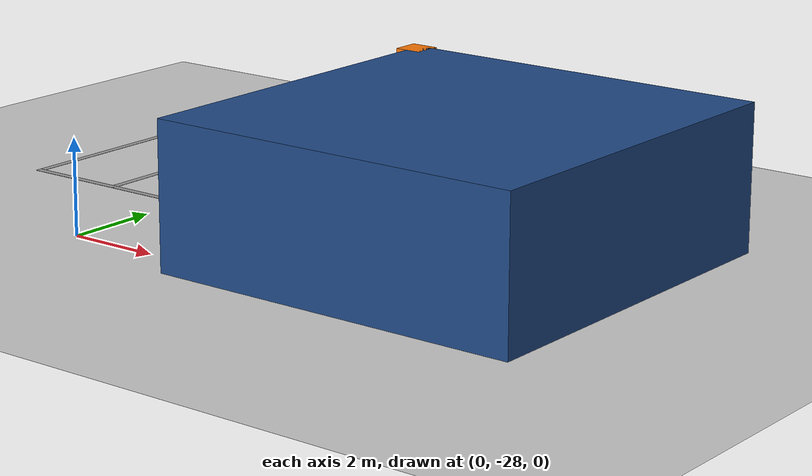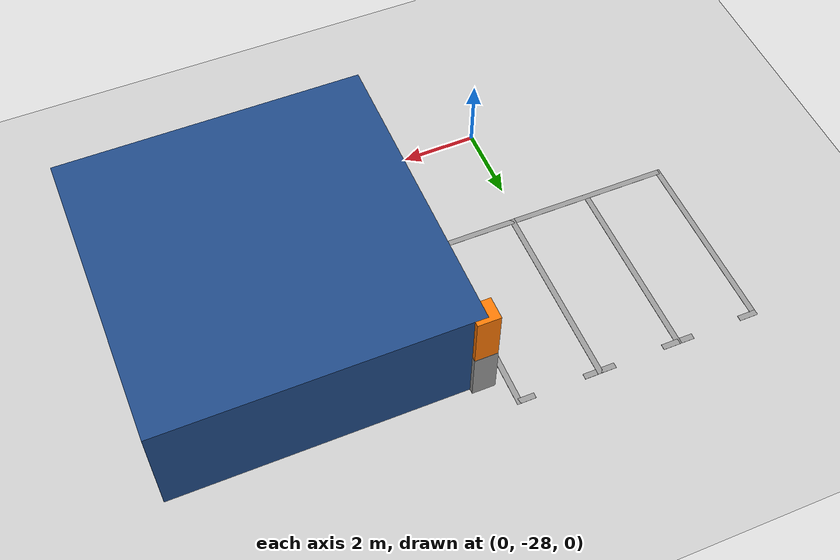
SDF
<sdf version="1.7">
 <world name="default">
  <model name="ground_plane">
   <static>1</static>
   <link name="link">
    <collision name="collision">
     <geometry><plane><normal>0 0 1</normal><size>100 100</size></plane></geometry>
     <surface><friction><ode><mu>100</mu><mu2>50</mu2></ode></friction></surface>
    </collision>
    <visual name="visual">
     <cast_shadows>0</cast_shadows>
     <geometry><plane><normal>0 0 1</normal><size>100 100</size></plane></geometry>
     <material>
      <script><uri>file://media/materials/scripts/gazebo.material</uri><name>Gazebo/Grey</name></script>
     </material>
    </visual>
   </link>
  </model>
  <model name="carport1_4_clone_7">
   <pose>-0.46382 -24.2093 0 0 -0 3.14141</pose>
   <link name="Wall_105">
    <collision name="Wall_105_Collision">
     <geometry><box><size>0.61 0.6 1.5</size></box></geometry>
     <pose>0 0 0.75 0 -0 0</pose>
    </collision>
    <visual name="Wall_105_Visual">
     <pose>0 0 0.75 0 -0 0</pose>
     <geometry><box><size>0.61 0.6 1.5</size></box></geometry>
     <material>
      <script><uri>file://media/materials/scripts/gazebo.material</uri><name>Gazebo/Grey</name></script>
      <ambient>1 1 1 1</ambient>
     </material>
     <meta><layer>0</layer></meta>
    </visual>
    <pose>-3.47407 -3.2865 0 0 -0 0</pose>
   </link>
   <link name="Wall_116">
    <collision name="Wall_116_Collision">
     <geometry><box><size>5.1 0.15 0.005</size></box></geometry>
     <pose>0 0 0.0025 0 -0 0</pose>
    </collision>
    <visual name="Wall_116_Visual">
     <pose>0 0 0.0025 0 -0 0</pose>
     <geometry><box><size>5.1 0.15 0.005</size></box></geometry>
     <material>
      <script><uri>file://media/materials/scripts/gazebo.material</uri><name>Gazebo/Grey</name></script>
      <ambient>1 1 1 1</ambient>
     </material>
     <meta><layer>0</layer></meta>
    </visual>
    <pose>-2.82307 -1.7385 0 0 -0 1.5708</pose>
   </link>
   <link name="Wall_124">
    <collision name="Wall_124_Collision">
     <geometry><box><size>5.1 0.15 0.005</size></box></geometry>
     <pose>0 0 0.0025 0 -0 0</pose>
    </collision>
    <visual name="Wall_124_Visual">
     <pose>0 0 0.0025 0 -0 0</pose>
     <geometry><box><size>5.1 0.15 0.005</size></box></geometry>
     <material>
      <script><uri>file://media/materials/scripts/gazebo.material</uri><name>Gazebo/Grey</name></script>
      <ambient>1 1 1 1</ambient>
     </material>
     <meta><layer>0</layer></meta>
    </visual>
    <pose>3.70393 -1.7305 0 0 -0 1.5708</pose>
   </link>
   <link name="Wall_146">
    <collision name="Wall_146_Collision">
     <geometry><box><size>6.67711 0.15 0.005</size></box></geometry>
     <pose>0 0 0.0025 0 -0 0</pose>
    </collision>
    <visual name="Wall_146_Visual">
     <pose>0 0 0.0025 0 -0 0</pose>
     <geometry><box><size>6.67711 0.15 0.005</size></box></geometry>
     <material>
      <script><uri>file://media/materials/scripts/gazebo.material</uri><name>Gazebo/Grey</name></script>
      <ambient>1 1 1 1</ambient>
     </material>
     <meta><layer>0</layer></meta>
    </visual>
    <pose>0.440428 0.7405 0 0 -0 0.001226</pose>
   </link>
   <link name="Wall_168">
    <collision name="Wall_168_Collision">
     <geometry><box><size>5.1 0.15 0.005</size></box></geometry>
     <pose>0 0 0.0025 0 -0 0</pose>
    </collision>
    <visual name="Wall_168_Visual">
     <pose>0 0 0.0025 0 -0 0</pose>
     <geometry><box><size>5.1 0.15 0.005</size></box></geometry>
     <material>
      <script><uri>file://media/materials/scripts/gazebo.material</uri><name>Gazebo/Grey</name></script>
      <ambient>1 1 1 1</ambient>
     </material>
     <meta><layer>0</layer></meta>
    </visual>
    <pose>-0.64827 -1.73839 0 0 -0 1.57088</pose>
   </link>
   <link name="Wall_173">
    <collision name="Wall_173_Collision">
     <geometry><box><size>5.1 0.15 0.005</size></box></geometry>
     <pose>0 0 0.0025 0 -0 0</pose>
    </collision>
    <visual name="Wall_173_Visual">
     <pose>0 0 0.0025 0 -0 0</pose>
     <geometry><box><size>5.1 0.15 0.005</size></box></geometry>
     <material>
      <script><uri>file://media/materials/scripts/gazebo.material</uri><name>Gazebo/Grey</name></script>
      <ambient>1 1 1 1</ambient>
     </material>
     <meta><layer>0</layer></meta>
    </visual>
    <pose>1.52673 -1.73839 0 0 -0 1.57088</pose>
   </link>
   <link name="Wall_177">
    <collision name="Wall_177_Collision">
     <geometry><box><size>0.6 0.59 3</size></box></geometry>
     <pose>0 0 1.5 0 -0 0</pose>
    </collision>
    <visual name="Wall_177_Visual">
     <pose>0 0 1.5 0 -0 0</pose>
     <geometry><box><size>0.6 0.59 3</size></box></geometry>
     <material>
      <script><uri>file://media/materials/scripts/gazebo.material</uri><name>Gazebo/Grey</name></script>
      <ambient>0.996078 0.47451 0.0196078 1</ambient>
     </material>
     <meta><layer>0</layer></meta>
    </visual>
    <pose>-3.47407 -3.2865 0 0 -0 0</pose>
   </link>
   <link name="Wall_179">
    <collision name="Wall_179_Collision">
     <geometry><box><size>0.5 0.15 0.005</size></box></geometry>
     <pose>0 0 0.0025 0 -0 0</pose>
    </collision>
    <visual name="Wall_179_Visual">
     <pose>0 0 0.0025 0 -0 0</pose>
     <geometry><box><size>0.5 0.15 0.005</size></box></geometry>
     <material>
      <script><uri>file://media/materials/scripts/gazebo.material</uri><name>Gazebo/Grey</name></script>
      <ambient>1 1 1 1</ambient>
     </material>
     <meta><layer>0</layer></meta>
    </visual>
    <pose>-2.64807 -4.2135 0 0 -0 0</pose>
   </link>
   <link name="Wall_181">
    <collision name="Wall_181_Collision">
     <geometry><box><size>0.5 0.15 0.005</size></box></geometry>
     <pose>0 0 0.0025 0 -0 0</pose>
    </collision>
    <visual name="Wall_181_Visual">
     <pose>0 0 0.0025 0 -0 0</pose>
     <geometry><box><size>0.5 0.15 0.005</size></box></geometry>
     <material>
      <script><uri>file://media/materials/scripts/gazebo.material</uri><name>Gazebo/Grey</name></script>
      <ambient>1 1 1 1</ambient>
     </material>
     <meta><layer>0</layer></meta>
    </visual>
    <pose>-0.823072 -4.2135 0 0 -0 3.14159</pose>
   </link>
   <link name="Wall_183">
    <collision name="Wall_183_Collision">
     <geometry><box><size>0.5 0.15 0.005</size></box></geometry>
     <pose>0 0 0.0025 0 -0 0</pose>
    </collision>
    <visual name="Wall_183_Visual">
     <pose>0 0 0.0025 0 -0 0</pose>
     <geometry><box><size>0.5 0.15 0.005</size></box></geometry>
     <material>
      <script><uri>file://media/materials/scripts/gazebo.material</uri><name>Gazebo/Grey</name></script>
      <ambient>1 1 1 1</ambient>
     </material>
     <meta><layer>0</layer></meta>
    </visual>
    <pose>-0.473072 -4.2135 0 0 -0 0</pose>
   </link>
   <link name="Wall_185">
    <collision name="Wall_185_Collision">
     <geometry><box><size>0.5 0.15 0.005</size></box></geometry>
     <pose>0 0 0.0025 0 -0 0</pose>
    </collision>
    <visual name="Wall_185_Visual">
     <pose>0 0 0.0025 0 -0 0</pose>
     <geometry><box><size>0.5 0.15 0.005</size></box></geometry>
     <material>
      <script><uri>file://media/materials/scripts/gazebo.material</uri><name>Gazebo/Grey</name></script>
      <ambient>1 1 1 1</ambient>
     </material>
     <meta><layer>0</layer></meta>
    </visual>
    <pose>1.35193 -4.2135 0 0 -0 3.14159</pose>
   </link>
   <link name="Wall_187">
    <collision name="Wall_187_Collision">
     <geometry><box><size>0.5 0.15 0.005</size></box></geometry>
     <pose>0 0 0.0025 0 -0 0</pose>
    </collision>
    <visual name="Wall_187_Visual">
     <pose>0 0 0.0025 0 -0 0</pose>
     <geometry><box><size>0.5 0.15 0.005</size></box></geometry>
     <material>
      <script><uri>file://media/materials/scripts/gazebo.material</uri><name>Gazebo/Grey</name></script>
      <ambient>1 1 1 1</ambient>
     </material>
     <meta><layer>0</layer></meta>
    </visual>
    <pose>1.70193 -4.2135 0 0 -0 0</pose>
   </link>
   <link name="Wall_189">
    <collision name="Wall_189_Collision">
     <geometry><box><size>0.5 0.15 0.005</size></box></geometry>
     <pose>0 0 0.0025 0 -0 0</pose>
    </collision>
    <visual name="Wall_189_Visual">
     <pose>0 0 0.0025 0 -0 0</pose>
     <geometry><box><size>0.5 0.15 0.005</size></box></geometry>
     <material>
      <script><uri>file://media/materials/scripts/gazebo.material</uri><name>Gazebo/Grey</name></script>
      <ambient>1 1 1 1</ambient>
     </material>
     <meta><layer>0</layer></meta>
    </visual>
    <pose>3.52893 -4.2055 0 0 -0 3.14159</pose>
   </link>
   <static>1</static>
  </model>
  <model name="lift_8*8_clone">
   <pose>1.18826 -19.6809 0 0 -0 0</pose>
   <link name="Wall_2">
    <collision name="Wall_2_Collision">
     <geometry><box><size>8.01 8 3</size></box></geometry>
     <pose>0 0 1.5 0 -0 0</pose>
    </collision>
    <visual name="Wall_2_Visual">
     <pose>0 0 1.5 0 -0 0</pose>
     <geometry><box><size>8.01 8 3</size></box></geometry>
     <material>
      <script><uri>file://media/materials/scripts/gazebo.material</uri><name>Gazebo/Grey</name></script>
      <ambient>0.12549 0.290196 0.529412 1</ambient>
     </material>
     <meta><layer>0</layer></meta>
    </visual>
    <pose>5.7875 -5.07723 0 0 -0 -1.5708</pose>
   </link>
   <static>1</static>
  </model>
 </world>
</sdf>
